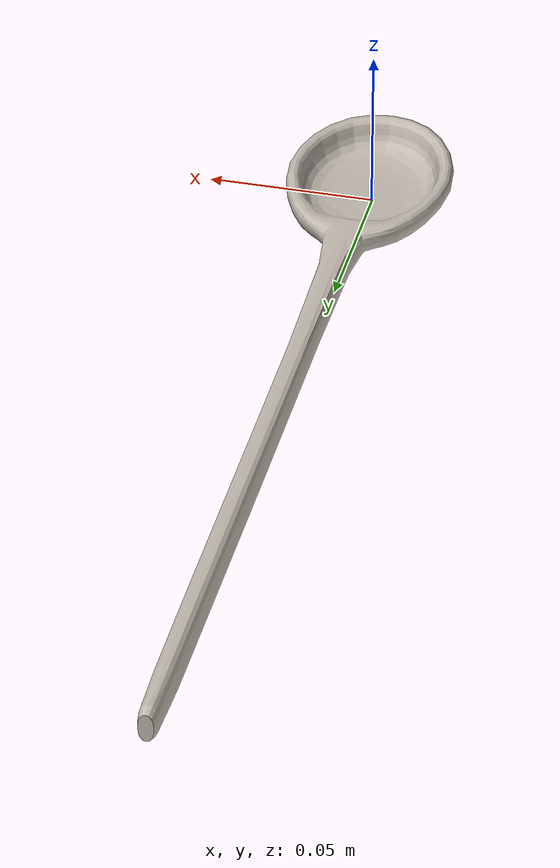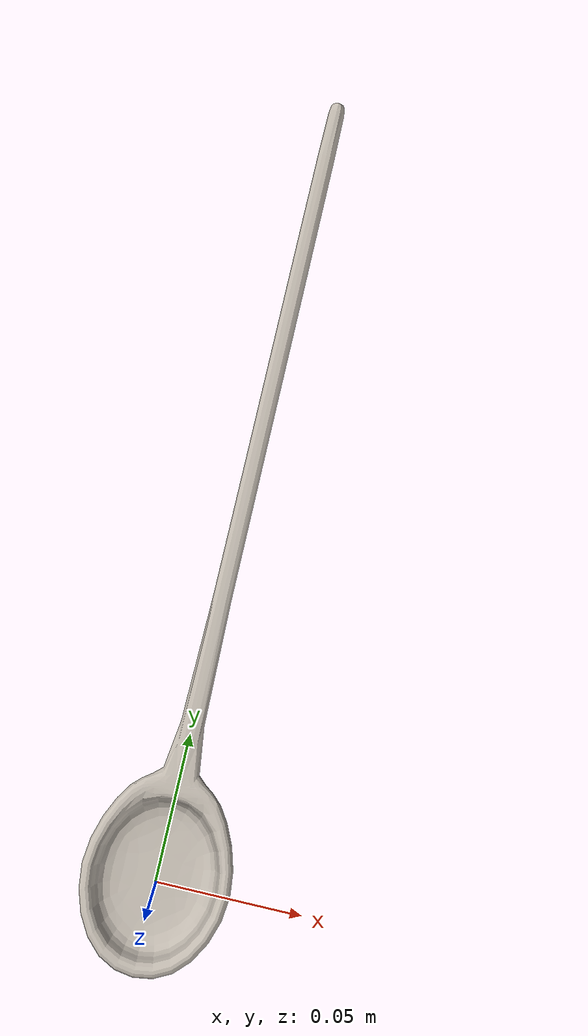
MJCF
<mujoco model="butter">
  <asset>
  <texture file="meshes/butter/texture_map.png" name="tex-butter" type="2d" />
  <material name="butter" reflectance="0.5" texrepeat="1 1" texture="tex-butter" texuniform="false" />
  <mesh file="./wooden_spoon.stl" name="butter_vis" scale="0.02 0.02 0.02" /></asset>
  <worldbody>
    <body>
      <body name="object">
      <geom solimp="0.998 0.998 0.001" solref="0.001 1" density="100" friction="1.95 1.2 0.1" type="mesh" mesh="butter_vis" conaffinity="0" contype="1" group="1" material="butter" />
      <geom solimp="0.998 0.998 0.001" solref="0.001 1" density="100" friction="1.95 1.2 0.1" type="mesh" mesh="butter_vis" pos="0.00000 0.00000 -0.00000" quat="0.00530 0.00000 0.00530 0.00000" size="0.2 0.02 0.02" group="0" rgba="0.8 0.8 0.8 0." /></body>
      <site rgba="0 0 0 0" size="0.005" pos="0 0 -0.02" name="bottom_site" />
      <site rgba="0 0 0 0" size="0.005" pos="0 0 0.02" name="top_site" />
      <site rgba="0 0 0 0" size="0.005" pos="0.02 0.02 0" name="horizontal_radius_site" />
    </body>
  </worldbody>
</mujoco>
